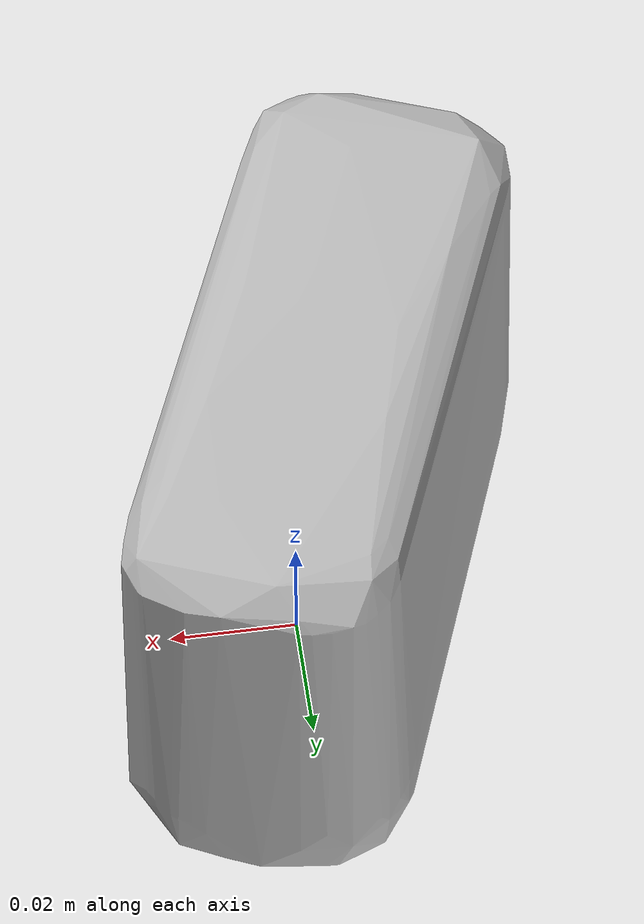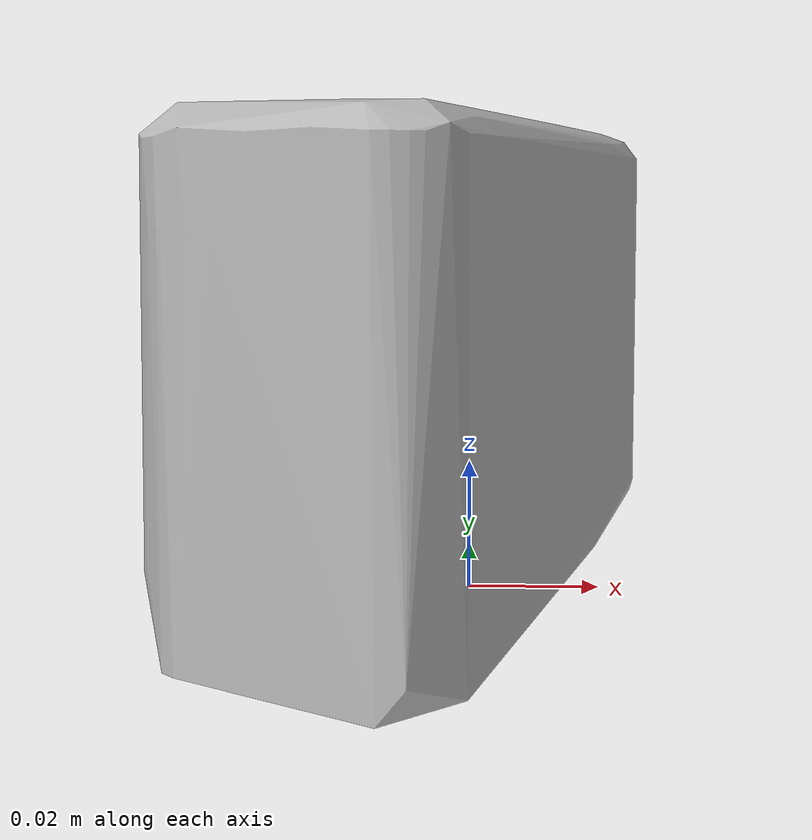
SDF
<?xml version='1.0'?>
<sdf version="1.4">
  <model name="dove_go_fresh_burst">
    <static>false</static>
    <link name="link">
      <inertial>
        <pose>-0.0043713787554984914 -0.0016873109492151273 0.03692548343301424 1.564650271877932 -0.012244736780114817 -0.3576451892684046</pose>
        <mass>0.02874398665447246</mass>
        <inertia>
          <ixx>3.229284104053762e-05</ixx>
          <ixy>6.110067666819493e-23</ixy>
          <ixz>-5.786615187228816e-22</ixz>
          <iyy>2.7444362348075996e-05</iyy>
          <iyz>-9.684874547432941e-24</iyz>
          <izz>1.4560331647592548e-05</izz>
        </inertia>
      </inertial>
      <collision name="collision">
        <geometry>
          <mesh>
            <!-- Use a downsampled mesh for collisions -->
            <uri>model:///dove_go_fresh_burst/dove_go_fresh_burst_250_collision.obj</uri>
	        </mesh>
        </geometry>
        <surface>
      </surface>
      </collision>
      <visual name="visual">
        <geometry>
          <mesh>
            <uri>model:///dove_go_fresh_burst/optimized_tsdf_texture_mapped_mesh.obj</uri>
	        </mesh>
        </geometry>
        <material>
          <script>
            <uri>model:///dove_go_fresh_burst/dove_go_fresh_burst.material</uri>
            <name>dove_go_fresh_burst</name>
          </script>
        </material>
      </visual>
    </link>
  </model>
</sdf>
